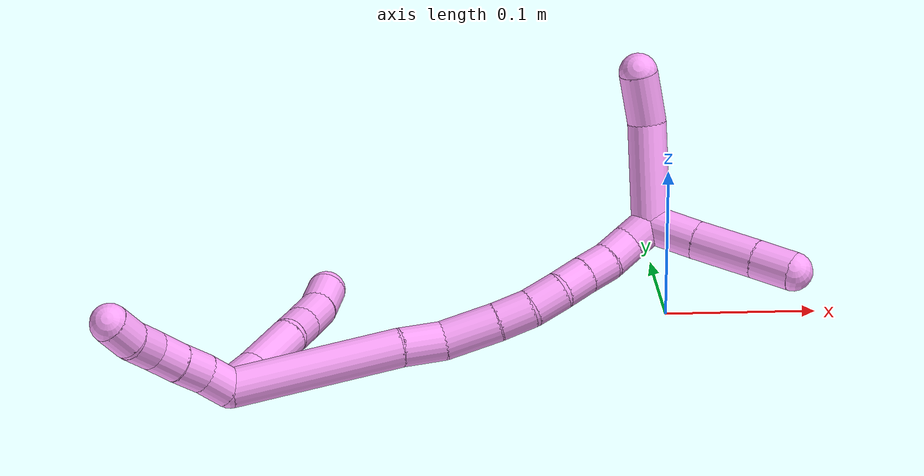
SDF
<sdf version="1.7">
 <world name="default">
  <model name="4">
   <static>0</static>
   <link name="4">
    <collision name="collision-cylinder-e_1_2_8">
     <pose>0.00629 0.008049 -0.011071 -2.51299 0.430729 -1.18466</pose>
     <geometry><cylinder><radius>0.0125</radius><length>0.030127</length></cylinder></geometry>
     <surface>
      <friction><ode><mu>1.16</mu><mu2>1.16</mu2><slip1>0</slip1><slip2>0</slip2></ode></friction>
      <contact><ode><kp>1e+06</kp><kd>1</kd><max_vel>0</max_vel><min_depth>0.001</min_depth></ode></contact>
     </surface>
    </collision>
    <visual name="visual-cylinder-e_1_2_8">
     <pose>0.00629 0.008049 -0.011071 -2.51299 0.430729 -1.18466</pose>
     <geometry><cylinder><radius>0.0125</radius><length>0.030127</length></cylinder></geometry>
     <material><ambient>1 0.65098 0.996078 1</ambient></material>
    </visual>
    <collision name="collision-cylinder-e_2_8_9">
     <pose>0.023479 0.02953 -0.034744 -2.32426 0.534369 -1.12738</pose>
     <geometry><cylinder><radius>0.0125</radius><length>0.042804</length></cylinder></geometry>
     <surface>
      <friction><ode><mu>1.16</mu><mu2>1.16</mu2><slip1>0</slip1><slip2>0</slip2></ode></friction>
      <contact><ode><kp>1e+06</kp><kd>1</kd><max_vel>0</max_vel><min_depth>0.001</min_depth></ode></contact>
     </surface>
    </collision>
    <visual name="visual-cylinder-e_2_8_9">
     <pose>0.023479 0.02953 -0.034744 -2.32426 0.534369 -1.12738</pose>
     <geometry><cylinder><radius>0.0125</radius><length>0.042804</length></cylinder></geometry>
     <material><ambient>1 0.65098 0.996078 1</ambient></material>
    </visual>
    <collision name="collision-cylinder-e_3_9_10">
     <pose>0.038099 0.049313 -0.05753 -2.58409 0.300487 -0.973068</pose>
     <geometry><cylinder><radius>0.0125</radius><length>0.025131</length></cylinder></geometry>
     <surface>
      <friction><ode><mu>1.16</mu><mu2>1.16</mu2><slip1>0</slip1><slip2>0</slip2></ode></friction>
      <contact><ode><kp>1e+06</kp><kd>1</kd><max_vel>0</max_vel><min_depth>0.001</min_depth></ode></contact>
     </surface>
    </collision>
    <visual name="visual-cylinder-e_3_9_10">
     <pose>0.038099 0.049313 -0.05753 -2.58409 0.300487 -0.973068</pose>
     <geometry><cylinder><radius>0.0125</radius><length>0.025131</length></cylinder></geometry>
     <material><ambient>1 0.65098 0.996078 1</ambient></material>
    </visual>
    <collision name="collision-cylinder-e_4_10_11">
     <pose>0.046767 0.063367 -0.077822 -2.49031 0.371355 -1.01534</pose>
     <geometry><cylinder><radius>0.0125</radius><length>0.027276</length></cylinder></geometry>
     <surface>
      <friction><ode><mu>1.16</mu><mu2>1.16</mu2><slip1>0</slip1><slip2>0</slip2></ode></friction>
      <contact><ode><kp>1e+06</kp><kd>1</kd><max_vel>0</max_vel><min_depth>0.001</min_depth></ode></contact>
     </surface>
    </collision>
    <visual name="visual-cylinder-e_4_10_11">
     <pose>0.046767 0.063367 -0.077822 -2.49031 0.371355 -1.01534</pose>
     <geometry><cylinder><radius>0.0125</radius><length>0.027276</length></cylinder></geometry>
     <material><ambient>1 0.65098 0.996078 1</ambient></material>
    </visual>
    <collision name="collision-cylinder-e_5_11_6">
     <pose>0.054575 0.079817 -0.096138 -2.32451 0.234024 -0.530294</pose>
     <geometry><cylinder><radius>0.0125</radius><length>0.024662</length></cylinder></geometry>
     <surface>
      <friction><ode><mu>1.16</mu><mu2>1.16</mu2><slip1>0</slip1><slip2>0</slip2></ode></friction>
      <contact><ode><kp>1e+06</kp><kd>1</kd><max_vel>0</max_vel><min_depth>0.001</min_depth></ode></contact>
     </surface>
    </collision>
    <visual name="visual-cylinder-e_5_11_6">
     <pose>0.054575 0.079817 -0.096138 -2.32451 0.234024 -0.530294</pose>
     <geometry><cylinder><radius>0.0125</radius><length>0.024662</length></cylinder></geometry>
     <material><ambient>1 0.65098 0.996078 1</ambient></material>
    </visual>
    <collision name="collision-cylinder-e_1_2_12">
     <pose>-0.007504 0.003773 0.005428 -0.607388 -0.848593 0.281268</pose>
     <geometry><cylinder><radius>0.0125</radius><length>0.02</length></cylinder></geometry>
     <surface>
      <friction><ode><mu>1.16</mu><mu2>1.16</mu2><slip1>0</slip1><slip2>0</slip2></ode></friction>
      <contact><ode><kp>1e+06</kp><kd>1</kd><max_vel>0</max_vel><min_depth>0.001</min_depth></ode></contact>
     </surface>
    </collision>
    <visual name="visual-cylinder-e_1_2_12">
     <pose>-0.007504 0.003773 0.005428 -0.607388 -0.848593 0.281268</pose>
     <geometry><cylinder><radius>0.0125</radius><length>0.02</length></cylinder></geometry>
     <material><ambient>1 0.65098 0.996078 1</ambient></material>
    </visual>
    <collision name="collision-cylinder-e_2_12_13">
     <pose>-0.022113 0.009706 0.017552 -0.312163 -0.790348 0.131088</pose>
     <geometry><cylinder><radius>0.0125</radius><length>0.02</length></cylinder></geometry>
     <surface>
      <friction><ode><mu>1.16</mu><mu2>1.16</mu2><slip1>0</slip1><slip2>0</slip2></ode></friction>
      <contact><ode><kp>1e+06</kp><kd>1</kd><max_vel>0</max_vel><min_depth>0.001</min_depth></ode></contact>
     </surface>
    </collision>
    <visual name="visual-cylinder-e_2_12_13">
     <pose>-0.022113 0.009706 0.017552 -0.312163 -0.790348 0.131088</pose>
     <geometry><cylinder><radius>0.0125</radius><length>0.02</length></cylinder></geometry>
     <material><ambient>1 0.65098 0.996078 1</ambient></material>
    </visual>
    <collision name="collision-cylinder-e_3_13_14">
     <pose>-0.036331 0.014633 0.030711 -0.404353 -0.791245 0.170798</pose>
     <geometry><cylinder><radius>0.0125</radius><length>0.02</length></cylinder></geometry>
     <surface>
      <friction><ode><mu>1.16</mu><mu2>1.16</mu2><slip1>0</slip1><slip2>0</slip2></ode></friction>
      <contact><ode><kp>1e+06</kp><kd>1</kd><max_vel>0</max_vel><min_depth>0.001</min_depth></ode></contact>
     </surface>
    </collision>
    <visual name="visual-cylinder-e_3_13_14">
     <pose>-0.036331 0.014633 0.030711 -0.404353 -0.791245 0.170798</pose>
     <geometry><cylinder><radius>0.0125</radius><length>0.02</length></cylinder></geometry>
     <material><ambient>1 0.65098 0.996078 1</ambient></material>
    </visual>
    <collision name="collision-cylinder-e_4_14_15">
     <pose>-0.049055 0.018737 0.045342 -0.162492 -0.595743 0.049986</pose>
     <geometry><cylinder><radius>0.0125</radius><length>0.02</length></cylinder></geometry>
     <surface>
      <friction><ode><mu>1.16</mu><mu2>1.16</mu2><slip1>0</slip1><slip2>0</slip2></ode></friction>
      <contact><ode><kp>1e+06</kp><kd>1</kd><max_vel>0</max_vel><min_depth>0.001</min_depth></ode></contact>
     </surface>
    </collision>
    <visual name="visual-cylinder-e_4_14_15">
     <pose>-0.049055 0.018737 0.045342 -0.162492 -0.595743 0.049986</pose>
     <geometry><cylinder><radius>0.0125</radius><length>0.02</length></cylinder></geometry>
     <material><ambient>1 0.65098 0.996078 1</ambient></material>
    </visual>
    <collision name="collision-cylinder-e_5_15_5">
     <pose>-0.060004 0.023592 0.061201 -0.428752 -0.563047 0.125766</pose>
     <geometry><cylinder><radius>0.0125</radius><length>0.02</length></cylinder></geometry>
     <surface>
      <friction><ode><mu>1.16</mu><mu2>1.16</mu2><slip1>0</slip1><slip2>0</slip2></ode></friction>
      <contact><ode><kp>1e+06</kp><kd>1</kd><max_vel>0</max_vel><min_depth>0.001</min_depth></ode></contact>
     </surface>
    </collision>
    <visual name="visual-cylinder-e_5_15_5">
     <pose>-0.060004 0.023592 0.061201 -0.428752 -0.563047 0.125766</pose>
     <geometry><cylinder><radius>0.0125</radius><length>0.02</length></cylinder></geometry>
     <material><ambient>1 0.65098 0.996078 1</ambient></material>
    </visual>
    <collision name="collision-cylinder-e_1_2_16">
     <pose>0.053064 0.011798 -0.007399 -2.13095 1.31414 -1.8973</pose>
     <geometry><cylinder><radius>0.0125</radius><length>0.109723</length></cylinder></geometry>
     <surface>
      <friction><ode><mu>1.16</mu><mu2>1.16</mu2><slip1>0</slip1><slip2>0</slip2></ode></friction>
      <contact><ode><kp>1e+06</kp><kd>1</kd><max_vel>0</max_vel><min_depth>0.001</min_depth></ode></contact>
     </surface>
    </collision>
    <visual name="visual-cylinder-e_1_2_16">
     <pose>0.053064 0.011798 -0.007399 -2.13095 1.31414 -1.8973</pose>
     <geometry><cylinder><radius>0.0125</radius><length>0.109723</length></cylinder></geometry>
     <material><ambient>1 0.65098 0.996078 1</ambient></material>
    </visual>
    <collision name="collision-cylinder-e_2_16_17">
     <pose>0.119416 0.025761 -0.017863 -2.52645 1.29552 -2.34668</pose>
     <geometry><cylinder><radius>0.0125</radius><length>0.027613</length></cylinder></geometry>
     <surface>
      <friction><ode><mu>1.16</mu><mu2>1.16</mu2><slip1>0</slip1><slip2>0</slip2></ode></friction>
      <contact><ode><kp>1e+06</kp><kd>1</kd><max_vel>0</max_vel><min_depth>0.001</min_depth></ode></contact>
     </surface>
    </collision>
    <visual name="visual-cylinder-e_2_16_17">
     <pose>0.119416 0.025761 -0.017863 -2.52645 1.29552 -2.34668</pose>
     <geometry><cylinder><radius>0.0125</radius><length>0.027613</length></cylinder></geometry>
     <material><ambient>1 0.65098 0.996078 1</ambient></material>
    </visual>
    <collision name="collision-cylinder-e_3_17_18">
     <pose>0.150045 0.03304 -0.021053 -1.59522 1.28404 -1.30755</pose>
     <geometry><cylinder><radius>0.0125</radius><length>0.036162</length></cylinder></geometry>
     <surface>
      <friction><ode><mu>1.16</mu><mu2>1.16</mu2><slip1>0</slip1><slip2>0</slip2></ode></friction>
      <contact><ode><kp>1e+06</kp><kd>1</kd><max_vel>0</max_vel><min_depth>0.001</min_depth></ode></contact>
     </surface>
    </collision>
    <visual name="visual-cylinder-e_3_17_18">
     <pose>0.150045 0.03304 -0.021053 -1.59522 1.28404 -1.30755</pose>
     <geometry><cylinder><radius>0.0125</radius><length>0.036162</length></cylinder></geometry>
     <material><ambient>1 0.65098 0.996078 1</ambient></material>
    </visual>
    <collision name="collision-cylinder-e_4_18_19">
     <pose>0.178132 0.042128 -0.021694 -1.69978 1.21365 -1.3373</pose>
     <geometry><cylinder><radius>0.0125</radius><length>0.022936</length></cylinder></geometry>
     <surface>
      <friction><ode><mu>1.16</mu><mu2>1.16</mu2><slip1>0</slip1><slip2>0</slip2></ode></friction>
      <contact><ode><kp>1e+06</kp><kd>1</kd><max_vel>0</max_vel><min_depth>0.001</min_depth></ode></contact>
     </surface>
    </collision>
    <visual name="visual-cylinder-e_4_18_19">
     <pose>0.178132 0.042128 -0.021694 -1.69978 1.21365 -1.3373</pose>
     <geometry><cylinder><radius>0.0125</radius><length>0.022936</length></cylinder></geometry>
     <material><ambient>1 0.65098 0.996078 1</ambient></material>
    </visual>
    <collision name="collision-cylinder-e_5_19_20">
     <pose>0.198497 0.051682 -0.023692 -1.83053 1.03046 -1.26944</pose>
     <geometry><cylinder><radius>0.0125</radius><length>0.022438</length></cylinder></geometry>
     <surface>
      <friction><ode><mu>1.16</mu><mu2>1.16</mu2><slip1>0</slip1><slip2>0</slip2></ode></friction>
      <contact><ode><kp>1e+06</kp><kd>1</kd><max_vel>0</max_vel><min_depth>0.001</min_depth></ode></contact>
     </surface>
    </collision>
    <visual name="visual-cylinder-e_5_19_20">
     <pose>0.198497 0.051682 -0.023692 -1.83053 1.03046 -1.26944</pose>
     <geometry><cylinder><radius>0.0125</radius><length>0.022438</length></cylinder></geometry>
     <material><ambient>1 0.65098 0.996078 1</ambient></material>
    </visual>
    <collision name="collision-cylinder-e_6_20_21">
     <pose>0.216078 0.062744 -0.028523 -2.1191 0.891636 -1.41118</pose>
     <geometry><cylinder><radius>0.0125</radius><length>0.020461</length></cylinder></geometry>
     <surface>
      <friction><ode><mu>1.16</mu><mu2>1.16</mu2><slip1>0</slip1><slip2>0</slip2></ode></friction>
      <contact><ode><kp>1e+06</kp><kd>1</kd><max_vel>0</max_vel><min_depth>0.001</min_depth></ode></contact>
     </surface>
    </collision>
    <visual name="visual-cylinder-e_6_20_21">
     <pose>0.216078 0.062744 -0.028523 -2.1191 0.891636 -1.41118</pose>
     <geometry><cylinder><radius>0.0125</radius><length>0.020461</length></cylinder></geometry>
     <material><ambient>1 0.65098 0.996078 1</ambient></material>
    </visual>
    <collision name="collision-cylinder-e_7_21_22">
     <pose>0.23207 0.073334 -0.035086 -2.13249 0.92656 -1.47069</pose>
     <geometry><cylinder><radius>0.0125</radius><length>0.020091</length></cylinder></geometry>
     <surface>
      <friction><ode><mu>1.16</mu><mu2>1.16</mu2><slip1>0</slip1><slip2>0</slip2></ode></friction>
      <contact><ode><kp>1e+06</kp><kd>1</kd><max_vel>0</max_vel><min_depth>0.001</min_depth></ode></contact>
     </surface>
    </collision>
    <visual name="visual-cylinder-e_7_21_22">
     <pose>0.23207 0.073334 -0.035086 -2.13249 0.92656 -1.47069</pose>
     <geometry><cylinder><radius>0.0125</radius><length>0.020091</length></cylinder></geometry>
     <material><ambient>1 0.65098 0.996078 1</ambient></material>
    </visual>
    <collision name="collision-cylinder-e_8_22_23">
     <pose>0.247253 0.084965 -0.041642 -2.04417 0.772939 -1.17459</pose>
     <geometry><cylinder><radius>0.0125</radius><length>0.020481</length></cylinder></geometry>
     <surface>
      <friction><ode><mu>1.16</mu><mu2>1.16</mu2><slip1>0</slip1><slip2>0</slip2></ode></friction>
      <contact><ode><kp>1e+06</kp><kd>1</kd><max_vel>0</max_vel><min_depth>0.001</min_depth></ode></contact>
     </surface>
    </collision>
    <visual name="visual-cylinder-e_8_22_23">
     <pose>0.247253 0.084965 -0.041642 -2.04417 0.772939 -1.17459</pose>
     <geometry><cylinder><radius>0.0125</radius><length>0.020481</length></cylinder></geometry>
     <material><ambient>1 0.65098 0.996078 1</ambient></material>
    </visual>
    <collision name="collision-cylinder-e_9_23_1">
     <pose>0.262222 0.097765 -0.045641 -1.67519 0.891804 -0.975825</pose>
     <geometry><cylinder><radius>0.0125</radius><length>0.020095</length></cylinder></geometry>
     <surface>
      <friction><ode><mu>1.16</mu><mu2>1.16</mu2><slip1>0</slip1><slip2>0</slip2></ode></friction>
      <contact><ode><kp>1e+06</kp><kd>1</kd><max_vel>0</max_vel><min_depth>0.001</min_depth></ode></contact>
     </surface>
    </collision>
    <visual name="visual-cylinder-e_9_23_1">
     <pose>0.262222 0.097765 -0.045641 -1.67519 0.891804 -0.975825</pose>
     <geometry><cylinder><radius>0.0125</radius><length>0.020095</length></cylinder></geometry>
     <material><ambient>1 0.65098 0.996078 1</ambient></material>
    </visual>
    <collision name="collision-cylinder-e_1_1_24">
     <pose>0.284221 0.096776 -0.042861 1.12878 1.05513 0.706771</pose>
     <geometry><cylinder><radius>0.0125</radius><length>0.032597</length></cylinder></geometry>
     <surface>
      <friction><ode><mu>1.16</mu><mu2>1.16</mu2><slip1>0</slip1><slip2>0</slip2></ode></friction>
      <contact><ode><kp>1e+06</kp><kd>1</kd><max_vel>0</max_vel><min_depth>0.001</min_depth></ode></contact>
     </surface>
    </collision>
    <visual name="visual-cylinder-e_1_1_24">
     <pose>0.284221 0.096776 -0.042861 1.12878 1.05513 0.706771</pose>
     <geometry><cylinder><radius>0.0125</radius><length>0.032597</length></cylinder></geometry>
     <material><ambient>1 0.65098 0.996078 1</ambient></material>
    </visual>
    <collision name="collision-cylinder-e_2_24_25">
     <pose>0.316099 0.080493 -0.033592 0.99681 1.02542 0.594566</pose>
     <geometry><cylinder><radius>0.0125</radius><length>0.041405</length></cylinder></geometry>
     <surface>
      <friction><ode><mu>1.16</mu><mu2>1.16</mu2><slip1>0</slip1><slip2>0</slip2></ode></friction>
      <contact><ode><kp>1e+06</kp><kd>1</kd><max_vel>0</max_vel><min_depth>0.001</min_depth></ode></contact>
     </surface>
    </collision>
    <visual name="visual-cylinder-e_2_24_25">
     <pose>0.316099 0.080493 -0.033592 0.99681 1.02542 0.594566</pose>
     <geometry><cylinder><radius>0.0125</radius><length>0.041405</length></cylinder></geometry>
     <material><ambient>1 0.65098 0.996078 1</ambient></material>
    </visual>
    <collision name="collision-cylinder-e_3_25_4">
     <pose>0.34489 0.065705 -0.024204 1.01841 1.02218 0.606857</pose>
     <geometry><cylinder><radius>0.0125</radius><length>0.025997</length></cylinder></geometry>
     <surface>
      <friction><ode><mu>1.16</mu><mu2>1.16</mu2><slip1>0</slip1><slip2>0</slip2></ode></friction>
      <contact><ode><kp>1e+06</kp><kd>1</kd><max_vel>0</max_vel><min_depth>0.001</min_depth></ode></contact>
     </surface>
    </collision>
    <visual name="visual-cylinder-e_3_25_4">
     <pose>0.34489 0.065705 -0.024204 1.01841 1.02218 0.606857</pose>
     <geometry><cylinder><radius>0.0125</radius><length>0.025997</length></cylinder></geometry>
     <material><ambient>1 0.65098 0.996078 1</ambient></material>
    </visual>
    <collision name="collision-cylinder-e_1_1_26">
     <pose>0.270451 0.134516 -0.034281 -1.19516 0.012506 -0.008512</pose>
     <geometry><cylinder><radius>0.0125</radius><length>0.065524</length></cylinder></geometry>
     <surface>
      <friction><ode><mu>1.16</mu><mu2>1.16</mu2><slip1>0</slip1><slip2>0</slip2></ode></friction>
      <contact><ode><kp>1e+06</kp><kd>1</kd><max_vel>0</max_vel><min_depth>0.001</min_depth></ode></contact>
     </surface>
    </collision>
    <visual name="visual-cylinder-e_1_1_26">
     <pose>0.270451 0.134516 -0.034281 -1.19516 0.012506 -0.008512</pose>
     <geometry><cylinder><radius>0.0125</radius><length>0.065524</length></cylinder></geometry>
     <material><ambient>1 0.65098 0.996078 1</ambient></material>
    </visual>
    <collision name="collision-cylinder-e_2_26_3">
     <pose>0.268671 0.178207 -0.011413 -0.883379 -0.127391 0.0603</pose>
     <geometry><cylinder><radius>0.0125</radius><length>0.034476</length></cylinder></geometry>
     <surface>
      <friction><ode><mu>1.16</mu><mu2>1.16</mu2><slip1>0</slip1><slip2>0</slip2></ode></friction>
      <contact><ode><kp>1e+06</kp><kd>1</kd><max_vel>0</max_vel><min_depth>0.001</min_depth></ode></contact>
     </surface>
    </collision>
    <visual name="visual-cylinder-e_2_26_3">
     <pose>0.268671 0.178207 -0.011413 -0.883379 -0.127391 0.0603</pose>
     <geometry><cylinder><radius>0.0125</radius><length>0.034476</length></cylinder></geometry>
     <material><ambient>1 0.65098 0.996078 1</ambient></material>
    </visual>
    <collision name="collision-sphere-3">
     <pose>0.266481 0.191422 -0.000563 0 -0 0</pose>
     <geometry><sphere><radius>0.0125</radius></sphere></geometry>
     <surface>
      <friction><ode><mu>1.16</mu><mu2>1.16</mu2><slip1>0</slip1><slip2>0</slip2></ode></friction>
      <contact><ode><kp>1e+06</kp><kd>1</kd><max_vel>0</max_vel><min_depth>0.001</min_depth></ode></contact>
     </surface>
    </collision>
    <visual name="visual-sphere-3">
     <pose>0.266481 0.191422 -0.000563 0 -0 0</pose>
     <geometry><sphere><radius>0.0125</radius></sphere></geometry>
     <material><ambient>1 0.65098 0.996078 1</ambient></material>
    </visual>
    <collision name="collision-sphere-26">
     <pose>0.270861 0.164992 -0.022262 0 -0 0</pose>
     <geometry><sphere><radius>0.0125</radius></sphere></geometry>
     <surface>
      <friction><ode><mu>1.16</mu><mu2>1.16</mu2><slip1>0</slip1><slip2>0</slip2></ode></friction>
      <contact><ode><kp>1e+06</kp><kd>1</kd><max_vel>0</max_vel><min_depth>0.001</min_depth></ode></contact>
     </surface>
    </collision>
    <visual name="visual-sphere-26">
     <pose>0.270861 0.164992 -0.022262 0 -0 0</pose>
     <geometry><sphere><radius>0.0125</radius></sphere></geometry>
     <material><ambient>1 0.65098 0.996078 1</ambient></material>
    </visual>
    <collision name="collision-sphere-4">
     <pose>0.355981 0.059934 -0.020647 0 -0 0</pose>
     <geometry><sphere><radius>0.0125</radius></sphere></geometry>
     <surface>
      <friction><ode><mu>1.16</mu><mu2>1.16</mu2><slip1>0</slip1><slip2>0</slip2></ode></friction>
      <contact><ode><kp>1e+06</kp><kd>1</kd><max_vel>0</max_vel><min_depth>0.001</min_depth></ode></contact>
     </surface>
    </collision>
    <visual name="visual-sphere-4">
     <pose>0.355981 0.059934 -0.020647 0 -0 0</pose>
     <geometry><sphere><radius>0.0125</radius></sphere></geometry>
     <material><ambient>1 0.65098 0.996078 1</ambient></material>
    </visual>
    <collision name="collision-sphere-25">
     <pose>0.333799 0.071475 -0.027761 0 -0 0</pose>
     <geometry><sphere><radius>0.0125</radius></sphere></geometry>
     <surface>
      <friction><ode><mu>1.16</mu><mu2>1.16</mu2><slip1>0</slip1><slip2>0</slip2></ode></friction>
      <contact><ode><kp>1e+06</kp><kd>1</kd><max_vel>0</max_vel><min_depth>0.001</min_depth></ode></contact>
     </surface>
    </collision>
    <visual name="visual-sphere-25">
     <pose>0.333799 0.071475 -0.027761 0 -0 0</pose>
     <geometry><sphere><radius>0.0125</radius></sphere></geometry>
     <material><ambient>1 0.65098 0.996078 1</ambient></material>
    </visual>
    <collision name="collision-sphere-24">
     <pose>0.2984 0.089512 -0.039423 0 -0 0</pose>
     <geometry><sphere><radius>0.0125</radius></sphere></geometry>
     <surface>
      <friction><ode><mu>1.16</mu><mu2>1.16</mu2><slip1>0</slip1><slip2>0</slip2></ode></friction>
      <contact><ode><kp>1e+06</kp><kd>1</kd><max_vel>0</max_vel><min_depth>0.001</min_depth></ode></contact>
     </surface>
    </collision>
    <visual name="visual-sphere-24">
     <pose>0.2984 0.089512 -0.039423 0 -0 0</pose>
     <geometry><sphere><radius>0.0125</radius></sphere></geometry>
     <material><ambient>1 0.65098 0.996078 1</ambient></material>
    </visual>
    <collision name="collision-sphere-1">
     <pose>0.270041 0.104041 -0.046299 0 -0 0</pose>
     <geometry><sphere><radius>0.0125</radius></sphere></geometry>
     <surface>
      <friction><ode><mu>1.16</mu><mu2>1.16</mu2><slip1>0</slip1><slip2>0</slip2></ode></friction>
      <contact><ode><kp>1e+06</kp><kd>1</kd><max_vel>0</max_vel><min_depth>0.001</min_depth></ode></contact>
     </surface>
    </collision>
    <visual name="visual-sphere-1">
     <pose>0.270041 0.104041 -0.046299 0 -0 0</pose>
     <geometry><sphere><radius>0.0125</radius></sphere></geometry>
     <material><ambient>1 0.65098 0.996078 1</ambient></material>
    </visual>
    <collision name="collision-sphere-23">
     <pose>0.254403 0.09149 -0.044984 0 -0 0</pose>
     <geometry><sphere><radius>0.0125</radius></sphere></geometry>
     <surface>
      <friction><ode><mu>1.16</mu><mu2>1.16</mu2><slip1>0</slip1><slip2>0</slip2></ode></friction>
      <contact><ode><kp>1e+06</kp><kd>1</kd><max_vel>0</max_vel><min_depth>0.001</min_depth></ode></contact>
     </surface>
    </collision>
    <visual name="visual-sphere-23">
     <pose>0.254403 0.09149 -0.044984 0 -0 0</pose>
     <geometry><sphere><radius>0.0125</radius></sphere></geometry>
     <material><ambient>1 0.65098 0.996078 1</ambient></material>
    </visual>
    <collision name="collision-sphere-22">
     <pose>0.240102 0.07844 -0.0383 0 -0 0</pose>
     <geometry><sphere><radius>0.0125</radius></sphere></geometry>
     <surface>
      <friction><ode><mu>1.16</mu><mu2>1.16</mu2><slip1>0</slip1><slip2>0</slip2></ode></friction>
      <contact><ode><kp>1e+06</kp><kd>1</kd><max_vel>0</max_vel><min_depth>0.001</min_depth></ode></contact>
     </surface>
    </collision>
    <visual name="visual-sphere-22">
     <pose>0.240102 0.07844 -0.0383 0 -0 0</pose>
     <geometry><sphere><radius>0.0125</radius></sphere></geometry>
     <material><ambient>1 0.65098 0.996078 1</ambient></material>
    </visual>
    <collision name="collision-sphere-21">
     <pose>0.224038 0.068228 -0.031873 0 -0 0</pose>
     <geometry><sphere><radius>0.0125</radius></sphere></geometry>
     <surface>
      <friction><ode><mu>1.16</mu><mu2>1.16</mu2><slip1>0</slip1><slip2>0</slip2></ode></friction>
      <contact><ode><kp>1e+06</kp><kd>1</kd><max_vel>0</max_vel><min_depth>0.001</min_depth></ode></contact>
     </surface>
    </collision>
    <visual name="visual-sphere-21">
     <pose>0.224038 0.068228 -0.031873 0 -0 0</pose>
     <geometry><sphere><radius>0.0125</radius></sphere></geometry>
     <material><ambient>1 0.65098 0.996078 1</ambient></material>
    </visual>
    <collision name="collision-sphere-6">
     <pose>0.057434 0.088563 -0.104347 0 -0 0</pose>
     <geometry><sphere><radius>0.0125</radius></sphere></geometry>
     <surface>
      <friction><ode><mu>1.16</mu><mu2>1.16</mu2><slip1>0</slip1><slip2>0</slip2></ode></friction>
      <contact><ode><kp>1e+06</kp><kd>1</kd><max_vel>0</max_vel><min_depth>0.001</min_depth></ode></contact>
     </surface>
    </collision>
    <visual name="visual-sphere-6">
     <pose>0.057434 0.088563 -0.104347 0 -0 0</pose>
     <geometry><sphere><radius>0.0125</radius></sphere></geometry>
     <material><ambient>1 0.65098 0.996078 1</ambient></material>
    </visual>
    <collision name="collision-sphere-11">
     <pose>0.051715 0.071071 -0.087929 0 -0 0</pose>
     <geometry><sphere><radius>0.0125</radius></sphere></geometry>
     <surface>
      <friction><ode><mu>1.16</mu><mu2>1.16</mu2><slip1>0</slip1><slip2>0</slip2></ode></friction>
      <contact><ode><kp>1e+06</kp><kd>1</kd><max_vel>0</max_vel><min_depth>0.001</min_depth></ode></contact>
     </surface>
    </collision>
    <visual name="visual-sphere-11">
     <pose>0.051715 0.071071 -0.087929 0 -0 0</pose>
     <geometry><sphere><radius>0.0125</radius></sphere></geometry>
     <material><ambient>1 0.65098 0.996078 1</ambient></material>
    </visual>
    <collision name="collision-sphere-10">
     <pose>0.041818 0.055663 -0.067715 0 -0 0</pose>
     <geometry><sphere><radius>0.0125</radius></sphere></geometry>
     <surface>
      <friction><ode><mu>1.16</mu><mu2>1.16</mu2><slip1>0</slip1><slip2>0</slip2></ode></friction>
      <contact><ode><kp>1e+06</kp><kd>1</kd><max_vel>0</max_vel><min_depth>0.001</min_depth></ode></contact>
     </surface>
    </collision>
    <visual name="visual-sphere-10">
     <pose>0.041818 0.055663 -0.067715 0 -0 0</pose>
     <geometry><sphere><radius>0.0125</radius></sphere></geometry>
     <material><ambient>1 0.65098 0.996078 1</ambient></material>
    </visual>
    <collision name="collision-sphere-9">
     <pose>0.034379 0.042963 -0.047345 0 -0 0</pose>
     <geometry><sphere><radius>0.0125</radius></sphere></geometry>
     <surface>
      <friction><ode><mu>1.16</mu><mu2>1.16</mu2><slip1>0</slip1><slip2>0</slip2></ode></friction>
      <contact><ode><kp>1e+06</kp><kd>1</kd><max_vel>0</max_vel><min_depth>0.001</min_depth></ode></contact>
     </surface>
    </collision>
    <visual name="visual-sphere-9">
     <pose>0.034379 0.042963 -0.047345 0 -0 0</pose>
     <geometry><sphere><radius>0.0125</radius></sphere></geometry>
     <material><ambient>1 0.65098 0.996078 1</ambient></material>
    </visual>
    <collision name="collision-sphere-2">
     <geometry><sphere><radius>0.0125</radius></sphere></geometry>
     <surface>
      <friction><ode><mu>1.16</mu><mu2>1.16</mu2><slip1>0</slip1><slip2>0</slip2></ode></friction>
      <contact><ode><kp>1e+06</kp><kd>1</kd><max_vel>0</max_vel><min_depth>0.001</min_depth></ode></contact>
     </surface>
    </collision>
    <visual name="visual-sphere-2">
     <geometry><sphere><radius>0.0125</radius></sphere></geometry>
     <material><ambient>1 0.65098 0.996078 1</ambient></material>
    </visual>
    <collision name="collision-sphere-19">
     <pose>0.188876 0.046104 -0.02221 0 -0 0</pose>
     <geometry><sphere><radius>0.0125</radius></sphere></geometry>
     <surface>
      <friction><ode><mu>1.16</mu><mu2>1.16</mu2><slip1>0</slip1><slip2>0</slip2></ode></friction>
      <contact><ode><kp>1e+06</kp><kd>1</kd><max_vel>0</max_vel><min_depth>0.001</min_depth></ode></contact>
     </surface>
    </collision>
    <visual name="visual-sphere-19">
     <pose>0.188876 0.046104 -0.02221 0 -0 0</pose>
     <geometry><sphere><radius>0.0125</radius></sphere></geometry>
     <material><ambient>1 0.65098 0.996078 1</ambient></material>
    </visual>
    <collision name="collision-sphere-8">
     <pose>0.012579 0.016097 -0.022143 0 -0 0</pose>
     <geometry><sphere><radius>0.0125</radius></sphere></geometry>
     <surface>
      <friction><ode><mu>1.16</mu><mu2>1.16</mu2><slip1>0</slip1><slip2>0</slip2></ode></friction>
      <contact><ode><kp>1e+06</kp><kd>1</kd><max_vel>0</max_vel><min_depth>0.001</min_depth></ode></contact>
     </surface>
    </collision>
    <visual name="visual-sphere-8">
     <pose>0.012579 0.016097 -0.022143 0 -0 0</pose>
     <geometry><sphere><radius>0.0125</radius></sphere></geometry>
     <material><ambient>1 0.65098 0.996078 1</ambient></material>
    </visual>
    <collision name="collision-sphere-12">
     <pose>-0.015007 0.007545 0.010856 0 -0 0</pose>
     <geometry><sphere><radius>0.0125</radius></sphere></geometry>
     <surface>
      <friction><ode><mu>1.16</mu><mu2>1.16</mu2><slip1>0</slip1><slip2>0</slip2></ode></friction>
      <contact><ode><kp>1e+06</kp><kd>1</kd><max_vel>0</max_vel><min_depth>0.001</min_depth></ode></contact>
     </surface>
    </collision>
    <visual name="visual-sphere-12">
     <pose>-0.015007 0.007545 0.010856 0 -0 0</pose>
     <geometry><sphere><radius>0.0125</radius></sphere></geometry>
     <material><ambient>1 0.65098 0.996078 1</ambient></material>
    </visual>
    <collision name="collision-sphere-13">
     <pose>-0.029219 0.011867 0.024248 0 -0 0</pose>
     <geometry><sphere><radius>0.0125</radius></sphere></geometry>
     <surface>
      <friction><ode><mu>1.16</mu><mu2>1.16</mu2><slip1>0</slip1><slip2>0</slip2></ode></friction>
      <contact><ode><kp>1e+06</kp><kd>1</kd><max_vel>0</max_vel><min_depth>0.001</min_depth></ode></contact>
     </surface>
    </collision>
    <visual name="visual-sphere-13">
     <pose>-0.029219 0.011867 0.024248 0 -0 0</pose>
     <geometry><sphere><radius>0.0125</radius></sphere></geometry>
     <material><ambient>1 0.65098 0.996078 1</ambient></material>
    </visual>
    <collision name="collision-sphere-14">
     <pose>-0.043444 0.017398 0.037173 0 -0 0</pose>
     <geometry><sphere><radius>0.0125</radius></sphere></geometry>
     <surface>
      <friction><ode><mu>1.16</mu><mu2>1.16</mu2><slip1>0</slip1><slip2>0</slip2></ode></friction>
      <contact><ode><kp>1e+06</kp><kd>1</kd><max_vel>0</max_vel><min_depth>0.001</min_depth></ode></contact>
     </surface>
    </collision>
    <visual name="visual-sphere-14">
     <pose>-0.043444 0.017398 0.037173 0 -0 0</pose>
     <geometry><sphere><radius>0.0125</radius></sphere></geometry>
     <material><ambient>1 0.65098 0.996078 1</ambient></material>
    </visual>
    <collision name="collision-sphere-15">
     <pose>-0.054666 0.020077 0.05351 0 -0 0</pose>
     <geometry><sphere><radius>0.0125</radius></sphere></geometry>
     <surface>
      <friction><ode><mu>1.16</mu><mu2>1.16</mu2><slip1>0</slip1><slip2>0</slip2></ode></friction>
      <contact><ode><kp>1e+06</kp><kd>1</kd><max_vel>0</max_vel><min_depth>0.001</min_depth></ode></contact>
     </surface>
    </collision>
    <visual name="visual-sphere-15">
     <pose>-0.054666 0.020077 0.05351 0 -0 0</pose>
     <geometry><sphere><radius>0.0125</radius></sphere></geometry>
     <material><ambient>1 0.65098 0.996078 1</ambient></material>
    </visual>
    <collision name="collision-sphere-5">
     <pose>-0.065341 0.027108 0.068892 0 -0 0</pose>
     <geometry><sphere><radius>0.0125</radius></sphere></geometry>
     <surface>
      <friction><ode><mu>1.16</mu><mu2>1.16</mu2><slip1>0</slip1><slip2>0</slip2></ode></friction>
      <contact><ode><kp>1e+06</kp><kd>1</kd><max_vel>0</max_vel><min_depth>0.001</min_depth></ode></contact>
     </surface>
    </collision>
    <visual name="visual-sphere-5">
     <pose>-0.065341 0.027108 0.068892 0 -0 0</pose>
     <geometry><sphere><radius>0.0125</radius></sphere></geometry>
     <material><ambient>1 0.65098 0.996078 1</ambient></material>
    </visual>
    <collision name="collision-sphere-16">
     <pose>0.106129 0.023596 -0.014798 0 -0 0</pose>
     <geometry><sphere><radius>0.0125</radius></sphere></geometry>
     <surface>
      <friction><ode><mu>1.16</mu><mu2>1.16</mu2><slip1>0</slip1><slip2>0</slip2></ode></friction>
      <contact><ode><kp>1e+06</kp><kd>1</kd><max_vel>0</max_vel><min_depth>0.001</min_depth></ode></contact>
     </surface>
    </collision>
    <visual name="visual-sphere-16">
     <pose>0.106129 0.023596 -0.014798 0 -0 0</pose>
     <geometry><sphere><radius>0.0125</radius></sphere></geometry>
     <material><ambient>1 0.65098 0.996078 1</ambient></material>
    </visual>
    <collision name="collision-sphere-17">
     <pose>0.132702 0.027927 -0.020928 0 -0 0</pose>
     <geometry><sphere><radius>0.0125</radius></sphere></geometry>
     <surface>
      <friction><ode><mu>1.16</mu><mu2>1.16</mu2><slip1>0</slip1><slip2>0</slip2></ode></friction>
      <contact><ode><kp>1e+06</kp><kd>1</kd><max_vel>0</max_vel><min_depth>0.001</min_depth></ode></contact>
     </surface>
    </collision>
    <visual name="visual-sphere-17">
     <pose>0.132702 0.027927 -0.020928 0 -0 0</pose>
     <geometry><sphere><radius>0.0125</radius></sphere></geometry>
     <material><ambient>1 0.65098 0.996078 1</ambient></material>
    </visual>
    <collision name="collision-sphere-18">
     <pose>0.167388 0.038152 -0.021178 0 -0 0</pose>
     <geometry><sphere><radius>0.0125</radius></sphere></geometry>
     <surface>
      <friction><ode><mu>1.16</mu><mu2>1.16</mu2><slip1>0</slip1><slip2>0</slip2></ode></friction>
      <contact><ode><kp>1e+06</kp><kd>1</kd><max_vel>0</max_vel><min_depth>0.001</min_depth></ode></contact>
     </surface>
    </collision>
    <visual name="visual-sphere-18">
     <pose>0.167388 0.038152 -0.021178 0 -0 0</pose>
     <geometry><sphere><radius>0.0125</radius></sphere></geometry>
     <material><ambient>1 0.65098 0.996078 1</ambient></material>
    </visual>
    <collision name="collision-sphere-20">
     <pose>0.208118 0.057259 -0.025174 0 -0 0</pose>
     <geometry><sphere><radius>0.0125</radius></sphere></geometry>
     <surface>
      <friction><ode><mu>1.16</mu><mu2>1.16</mu2><slip1>0</slip1><slip2>0</slip2></ode></friction>
      <contact><ode><kp>1e+06</kp><kd>1</kd><max_vel>0</max_vel><min_depth>0.001</min_depth></ode></contact>
     </surface>
    </collision>
    <visual name="visual-sphere-20">
     <pose>0.208118 0.057259 -0.025174 0 -0 0</pose>
     <geometry><sphere><radius>0.0125</radius></sphere></geometry>
     <material><ambient>1 0.65098 0.996078 1</ambient></material>
    </visual>
    <inertial>
     <pose>0.136105 0.057058 -0.022355 0 -0 0</pose>
     <mass>0.75</mass>
     <inertia>
      <ixx>2.6e-05</ixx>
      <ixy>0</ixy>
      <ixz>0</ixz>
      <iyy>0.000128</iyy>
      <iyz>0</iyz>
      <izz>-0.000209</izz>
     </inertia>
    </inertial>
   </link>
   <pose>-0.286846 -0.144371 0.0125 0.940911 -0.051344 -0.030889</pose>
  </model>
 </world>
</sdf>
